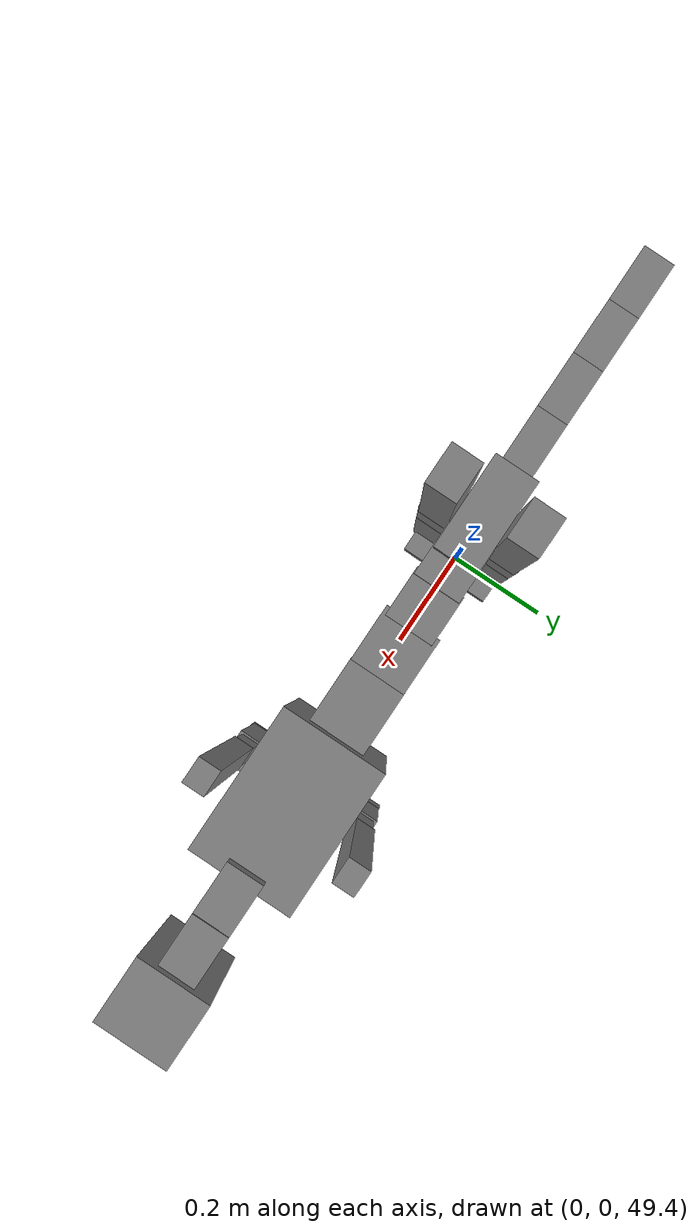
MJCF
<mujoco model="dog">

    <default>
        <joint armature="0.02" stiffness="1" damping="0.2" limited="true"/>
        <geom condim="3" friction="1 0.05 0.05" margin="0.01"/>
        <motor ctrllimited="true" ctrlrange="-1.0 1.0" forcelimited="true" gear="50"/>
    </default>

    <compiler inertiafromgeom="true" angle="radian"/>

    <option timestep="0.016" iterations="50" tolerance="1e-10" solver="Newton" jacobian="dense" cone="pyramidal"/>

    <size nconmax="20000" njmax="60000" nstack="5000000"/>
    <visual>
        <map force="0.1" zfar="30"/>
        <rgba haze="0.15 0.25 0.35 1"/>
        <quality shadowsize="2048"/>
        <global offwidth="800" offheight="800"/>
    </visual>

    <asset>
        <texture type="skybox" builtin="gradient" rgb1="0.3 0.5 0.7" rgb2="0 0 0" width="512" height="512"/>
        <texture name="texplane" type="2d" builtin="checker" rgb1=".2 .3 .4" rgb2=".1 0.15 0.2" width="512" height="512"
                 mark="cross" markrgb=".8 .8 .8"/>
        <texture name="texgeom" type="cube" builtin="flat" mark="cross" width="127" height="1278" rgb1="0.8 0.6 0.4"
                 rgb2="0.8 0.6 0.4" markrgb="1 1 1" random="0.01"/>

        <material name="matplane" reflectance="0.3" texture="texplane" texrepeat="1 1" texuniform="true"/>
        <material name="matgeom" texture="texgeom" texuniform="true" rgba="0.8 0.6 .4 1"/>
    </asset>

    <worldbody>
        <geom name="floor" pos="0 0 0" size="0 0 .25" type="plane" material="matplane" condim="3"/>

        <light directional="false" diffuse=".2 .2 .2" specular="0 0 0" pos="0 0 5" dir="0 0 -1" castshadow="false"/>
        <light mode="targetbodycom" target="torso" directional="false" diffuse=".8 .8 .8" specular="0.3 0.3 0.3"
               pos="0 0 4.0" dir="0 0 -1"/>

        <body name="root" pos="0 0 50">
            <freejoint name="root_1"/>
            <geom type="box" pos="0 0 -0.02" size="0.0774  0.0358  0.063" density="2030"/>

            <body name="spine1" pos="0.054 0 0">
                <joint name="spine1_y" axis="0 1 0" range="0 0.7" limited="true"/>
                <geom type="box" pos="0.02375 0 -0.03" size="0.04375  0.0375  0.05985" density="2030"/>

                <body name="spine2" pos="0.0612 0 0">
                    <joint name="spine2_y" axis="0 1 0" range="-0.15 0.15" limited="true"/>
                    <geom type="box" pos="0.03555  0  -0.04" size="0.04055  0.039  0.06615" density="2030"/>

                    <body name="spine3" pos="0.0730 0 0">
                        <joint name="spine3_y" axis="0 1 0" range="-0.15 0.15" limited="true"/>
                        <geom type="box" pos="0.03555  0  -0.057" size="0.04555  0.0445  0.081" density="2030"/>

                        <body name="spine4" pos="0.0780 0 0">
                            <joint name="spine4_y" axis="0 1 0" range="-0.15 0.15" limited="true"/>
                            <geom type="box" pos="0.05265  0  -0.07" size="0.05265  0.045  0.09135" density="2030"/>

                            <body name="torso" pos="0.1082 0 0">
                                <joint name="torso_y" axis="0 1 0" range="-0.15 0.15" limited="true"/>
                                <geom type="box" pos="0.11925  0  -0.085" size="0.11925  0.085  0.11745"
                                      density="2030"/>

                                <body name="neck1" pos="0.2160  0   0.0180">
                                    <joint name="neck1_y" axis="0 1 0" range="-1.2  -1" limited="true"/>
                                    <geom type="box" pos="0.0423  0  0" size="0.0423  0.03  0.036" density="2325"/>

                                    <body name="neck2" pos="0.0853  0  0">
                                        <joint name="neck2_y" axis="0 1 0" range="0.1  0" limited="true"/>
                                        <geom type="box" pos="0.0423  0  0" size="0.0423  0.03  0.036" density="2325"/>

                                        <body name="head" pos="0.0853  0  0">
                                            <joint name="head_y" axis="0 1 0" range="-0.3  -0.2" limited="true"/>
                                            <geom type="box" pos="0.0531  0  -0.055" size="0.0531  0.06  0.1044"
                                                  density="4030"/>

                                        </body>
                                    </body>
                                </body>

                                <body name="front_shoulder" pos="0.156  0   -0.0480">
                                    <joint name="front_shoulder_y" axis="0 1 0" range="-1 1.5" limited="true"/>
                                    <geom type="box" pos="0 0.13 -0.1384" size="0.0225  0.0192  0.1651" density="1158"/>
                                    <geom type="box" pos="0 -0.13 -0.1384" size="0.0225  0.0192  0.1651"
                                          density="1158"/>

                                    <body name="front_elbow" pos="0  0  -0.2769">
                                        <joint name="front_elbow_y" axis="0 1 0" range="-2 0" limited="true"/>
                                        <geom type="box" pos="0 0.13 -0.0705" size="0.0178  0.0182  0.0705"
                                              density="1081"/>
                                        <geom type="box" pos="0 -0.13 -0.0705" size="0.0178  0.0182  0.0705"
                                              density="1081"/>

                                        <body name="front_wrist" pos="0  0  -0.1410">
                                            <joint name="front_wrist_y" axis="0 1 0" range="-0.2 0" limited="true"/>
                                            <geom type="box" pos="0 0.13 -0.0787" size="0.0215  0.0238  0.0918"
                                                  density="1664"/>
                                            <geom type="box" pos="0 -0.13 -0.0787" size="0.0215  0.0238  0.0918"
                                                  density="1664"/>

                                            <body name="front_finger_end" pos="0  0  -0.1573">
                                                <joint name="front_finger_y" axis="0 1 0" range="-0.4 1"
                                                       limited="true"/>
                                                <geom type="box" pos="0.0258  0.13  -0.0084"
                                                      size="0.0473  0.0258  0.0234" density="1515"/>
                                                <geom type="box" pos="0.0258  -0.13  -0.0084"
                                                      size="0.0473  0.0258  0.0234" density="1515"/>

                                            </body>

                                        </body>
                                    </body>
                                </body>

                            </body>
                        </body>
                    </body>
                </body>
            </body>

            <body name="back_hip" pos="-0.03 0 -0.018">
                <joint name="back_hip_y" axis="0 1 0" range="-1.5 0.3" limited="true"/>
                <geom type="box" pos="0 0.07 -0.1218" size="0.0349  0.0274  0.1446" density="1154"/>
                <geom type="box" pos="0 -0.07 -0.1218" size="0.0349  0.0274  0.1446" density="1154"/>

                <body name="back_knee" pos="0  0  -0.2437">
                    <joint name="back_knee_y" axis="0 1 0" range="0 2.8" limited="true"/>
                    <geom type="box" pos="0 0.07 -0.0739" size="0.0309  0.0305  0.0894" density="1227"/>
                    <geom type="box" pos="0 -0.07 -0.0739" size="0.0309  0.0305  0.0894" density="1227"/>

                    <body name="back_ankle" pos="0  0  -0.1478">
                        <joint name="back_ankle_y" axis="0 1 0" range="-2.2 0" limited="true"/>
                        <geom type="box" pos="0 0.07 -0.0960" size="0.0310  0.0310  0.1073" density="1284"/>
                        <geom type="box" pos="0 -0.07 -0.0960" size="0.0310  0.0310  0.1073" density="1284"/>

                        <body name="back_toe_end" pos="0  0  -0.1920">
                            <joint name="back_toe_y" axis="0 1 0" range="-0.4 1" limited="true"/>
                            <geom type="box" pos="0.0256  0.07  -0.0003" size="0.0468  0.0256  0.0153" density="1515"/>
                            <geom type="box" pos="0.0256  -0.07  -0.0003" size="0.0468  0.0256  0.0153" density="1515"/>

                        </body>
                    </body>
                </body>
            </body>

            <body name="tail1" pos="-0.074 0 -0.006">
                <joint name="tail1_y" axis="0 1 0" range="-0.2 0.2" limited="true"/>
                <geom type="box" pos="-0.0536  0  0" size="0.045  0.025  0.0175" density="1587"/>

                <body name="tail2" pos="-0.09 0 0">
                    <joint name="tail2_y" axis="0 1 0" range="-0.2 0.2" limited="true"/>
                    <geom type="box" pos="-0.0536  0  0" size="0.045  0.025  0.0175" density="1587"/>

                    <body name="tail3" pos="-0.09 0 0">
                        <joint name="tail3_y" axis="0 1 0" range="-0.2 0.2" limited="true"/>
                        <geom type="box" pos="-0.0536  0  0" size="0.045  0.025  0.0175" density="1587"/>

                        <body name="tail4" pos="-0.09 0 0">
                            <joint name="tail4_y" axis="0 1 0" range="-0.2 0.2" limited="true"/>
                            <geom type="box" pos="-0.0536  0  0" size="0.045  0.025  0.0175" density="1587"/>

                        </body>
                    </body>
                </body>
            </body>
        </body>
    </worldbody>

    <actuator>
        <motor joint="spine1_y" forcerange="-150 150     "/>
        <motor joint="spine2_y" forcerange="-150 150     "/>
        <motor joint="spine3_y" forcerange="-150 150     "/>
        <motor joint="spine4_y" forcerange="-150 150     "/>
        <motor joint="torso_y" forcerange="-150 150     "/>
        <motor joint="neck1_y" forcerange="-100 100       "/>
        <motor joint="neck2_y" forcerange="-100 100       "/>
        <motor joint="head_y" forcerange="-150 150       "/>
        <motor joint="front_shoulder_y" forcerange="-126.06 102.05"/>
        <motor joint="front_elbow_y" forcerange="-116.05 116.51"/>
        <motor joint="front_wrist_y" forcerange="-58.84 131.90"/>
        <motor joint="front_finger_y" forcerange="-41.22 56.46"/>
        <motor joint="back_hip_y" forcerange="-273.51 291.63"/>
        <motor joint="back_knee_y" forcerange="-312.51 330.67"/>
        <motor joint="back_angle_y" forcerange="-202.40 193.64"/>
        <motor joint="back_toe_y" forcerange="-67.52 56.91"/>
        <motor joint="tail1_y" forcerange="-50 50     "/>
        <motor joint="tail2_y" forcerange="-50 50     "/>
        <motor joint="tail3_y" forcerange="-50 50     "/>
        <motor joint="tail4_y" forcerange="-50 50     "/>
    </actuator>
</mujoco>
